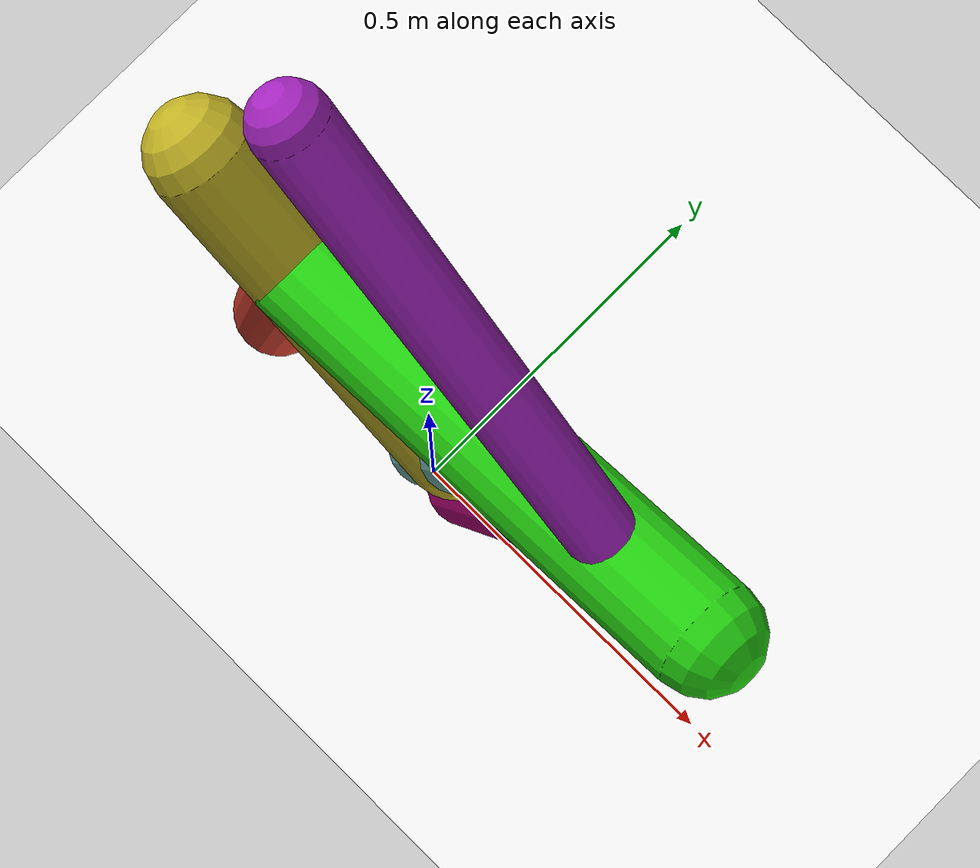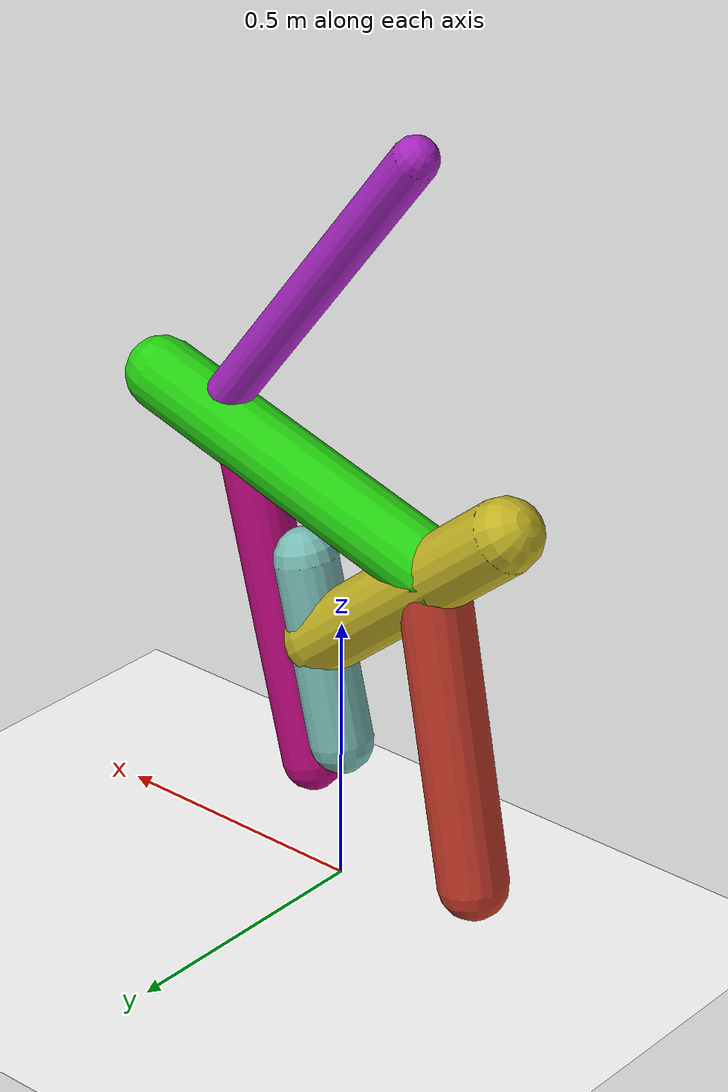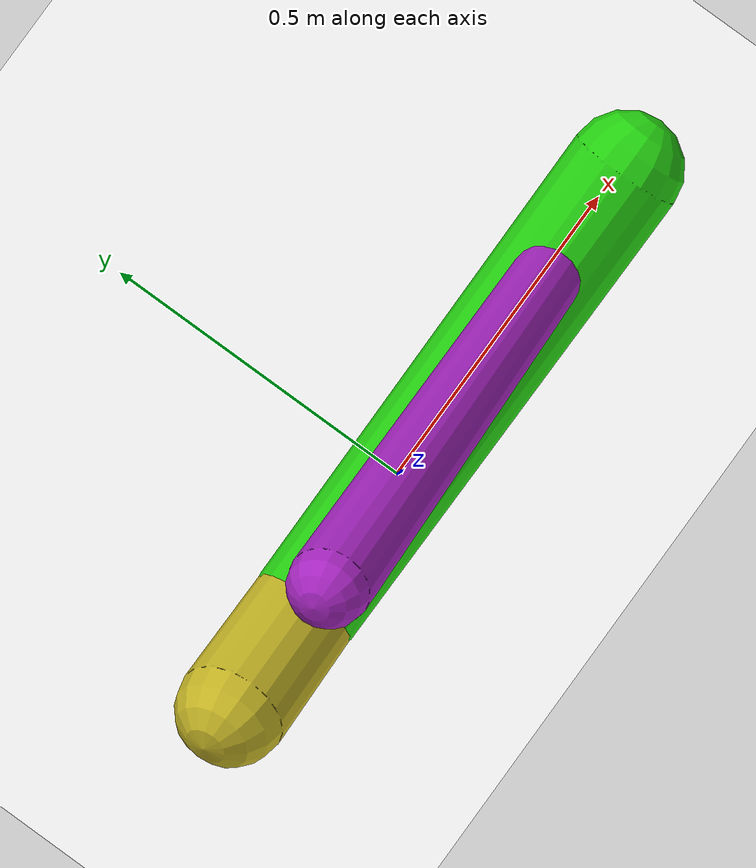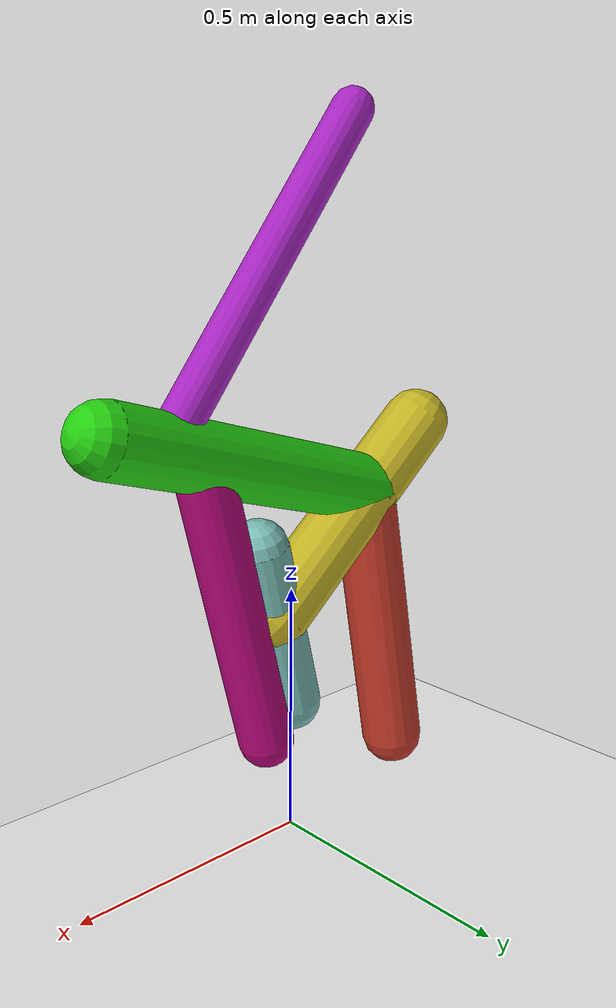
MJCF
<mujoco model="morphology">
  <option timestep="0.01"/>
  <default>
    <default class="/"/>
    <default class="0/"/>
    <default class="0/1/"/>
    <default class="0/1/2/"/>
    <default class="0/1/3/"/>
    <default class="0/1/3/4/"/>
    <default class="0/1/3/5/"/>
  </default>
  <asset>
    <texture name="texplane" type="2d" builtin="checker" rgb1="0.10000000000000001 0.20000000000000001 0.29999999999999999" rgb2="0.20000000000000001 0.29999999999999999 0.40000000000000002" width="300" height="300"/>
    <material name="MatPlane" class="/" texture="texplane" texrepeat="20 20" specular="1" shininess="1" reflectance="0.5"/>
  </asset>
  <worldbody>
    <light name="//unnamed_light_0" class="/" directional="true" pos="0 0 1.5" dir="0 0 -1.3" cutoff="100" exponent="1" diffuse="1 1 1" specular="0.10000000000000001 0.10000000000000001 0.10000000000000001"/>
    <geom name="ground" class="/" type="plane" size="15 15 0.5" material="MatPlane" rgba="1 1 1 1"/>
    <site name="body" class="/" size="9.9999999999999995e-07 9.9999999999999995e-07 9.9999999999999995e-07" pos="0 0 0.26992443799972532"/>
    <body pos="0 0 0.26992443799972532" name="0/">
      <joint name="0/rootx/" class="/" type="slide" axis="1 0 0" limited="false" stiffness="0" armature="0" damping="0"/>
      <joint name="0/rootz/" class="/" type="slide" axis="0 0 1" limited="false" stiffness="0" armature="0" damping="0"/>
      <joint name="0/rooty/" class="/" type="hinge" axis="0 1 0" limited="false" stiffness="0" armature="0" damping="0"/>
      <geom name="0/geom" class="0/" type="capsule" contype="1" conaffinity="1" condim="3" size="0.057430260536858076" rgba="0.47297161036538571 0.73764456752780383 0.7113272505060465 1" friction="0.59999999999999998 0.10000000000000001 0.10000000000000001" fromto="0 0 0 0.081769609044984204 0 0.32864169171285451"/>
      <site name="0/end0" class="0/" size="0.0050000000000000001" pos="0.081769609044984204 0 0.32864169171285451"/>
      <site name="0/attach1" class="0/" size="9.9999999999999995e-07 9.9999999999999995e-07 9.9999999999999995e-07" pos="0.046341061683691016 0 0.18625018616781747"/>
      <body pos="0.046341061683691016 0 0.18625018616781747" name="0/1/">
        <joint name="0/1/joint/" class="0/" type="hinge" axis="0 1 0" limited="true" range="-57.138010440327619 57.138010440327619"/>
        <geom name="0/1/geom" class="0/1/" type="capsule" contype="1" conaffinity="1" condim="3" size="0.066187570001106352" rgba="0.76245179324921486 0.69874345935975246 0.14115652847900184 1" friction="0.59999999999999998 0.10000000000000001 0.10000000000000001" fromto="0 0 0 -0.39223400895278937 0 0.32810690543499188"/>
        <site name="0/1/end1" class="0/1/" size="0.0050000000000000001" pos="-0.39223400895278937 0 0.32810690543499188"/>
        <site name="0/1/attach2" class="0/1/" size="9.9999999999999995e-07 9.9999999999999995e-07 9.9999999999999995e-07" pos="-0.24214039123305212 0 0.20255238616460103"/>
        <body pos="-0.24214039123305212 0 0.20255238616460103" name="0/1/2/">
          <joint name="0/1/2/joint/" class="0/1/" type="hinge" axis="0 1 0" limited="true" range="-36.321235132574913 36.321235132574913"/>
          <geom name="0/1/2/geom" class="0/1/2/" type="capsule" contype="1" conaffinity="1" condim="3" size="0.063134393563269067" rgba="0.79176855926545642 0.23319788171278755 0.16734163518432343 1" friction="0.59999999999999998 0.10000000000000001 0.10000000000000001" fromto="0 0 0 -0.10287414193727462 0 -0.55872700297670153"/>
          <site name="0/1/2/end2" class="0/1/2/" size="0.0050000000000000001" pos="-0.10287414193727462 0 -0.55872700297670153"/>
        </body>
        <site name="0/1/attach3" class="0/1/" size="9.9999999999999995e-07 9.9999999999999995e-07 9.9999999999999995e-07" pos="-0.25159413022727611 0 0.21046051492290635"/>
        <body pos="-0.25159413022727611 0 0.21046051492290635" name="0/1/3/">
          <joint name="0/1/3/joint/" class="0/1/" type="hinge" axis="0 1 0" limited="true" range="-30.22486129143299 30.22486129143299"/>
          <geom name="0/1/3/geom" class="0/1/3/" type="capsule" contype="1" conaffinity="1" condim="3" size="0.0669756510662462" rgba="0.14469178841281605 0.82038782513547692 0.067129039563824988 1" friction="0.59999999999999998 0.10000000000000001 0.10000000000000001" fromto="0 0 0 0.61654062675724219 0 0.18345310469416276"/>
          <site name="0/1/3/end3" class="0/1/3/" size="0.0050000000000000001" pos="0.61654062675724219 0 0.18345310469416276"/>
          <site name="0/1/3/attach4" class="0/1/3/" size="9.9999999999999995e-07 9.9999999999999995e-07 9.9999999999999995e-07" pos="0.49597875955866322 0 0.14757963928826792"/>
          <body pos="0.49597875955866322 0 0.14757963928826792" name="0/1/3/4/">
            <joint name="0/1/3/4/joint/" class="0/1/3/" type="hinge" axis="0 1 0" limited="true" range="-59.14682412083333 59.14682412083333"/>
            <geom name="0/1/3/4/geom" class="0/1/3/4/" type="capsule" contype="1" conaffinity="1" condim="3" size="0.040039761617859632" rgba="0.64873258582471538 0.14248418471202562 0.75070146622426548 1" friction="0.59999999999999998 0.10000000000000001 0.10000000000000001" fromto="0 0 0 -0.4380853708999049 0 0.56554630042924625"/>
            <site name="0/1/3/4/end4" class="0/1/3/4/" size="0.0050000000000000001" pos="-0.4380853708999049 0 0.56554630042924625"/>
          </body>
          <site name="0/1/3/attach5" class="0/1/3/" size="9.9999999999999995e-07 9.9999999999999995e-07 9.9999999999999995e-07" pos="0.42194793713148782 0 0.12555159502335192"/>
          <body pos="0.42194793713148782 0 0.12555159502335192" name="0/1/3/5/">
            <joint name="0/1/3/5/joint/" class="0/1/3/" type="hinge" axis="0 1 0" limited="true" range="-39.518330195611341 39.518330195611341"/>
            <geom name="0/1/3/5/geom" class="0/1/3/5/" type="capsule" contype="1" conaffinity="1" condim="3" size="0.054466083184452119" rgba="0.73221881539611822 0.028306813673424247 0.48958089963677009 1" friction="0.59999999999999998 0.10000000000000001 0.10000000000000001" fromto="0 0 0 -0.15076007544541681 0 -0.58481361350700212"/>
            <site name="0/1/3/5/end5" class="0/1/3/5/" size="0.0050000000000000001" pos="-0.15076007544541681 0 -0.58481361350700212"/>
          </body>
        </body>
      </body>
      <camera name="0/side" class="0/" mode="trackcom" pos="0.40000000000000002 -4 0.20000000000000001" quat="0.70699999999999996 0.70699999999999996 0 0"/>
    </body>
  </worldbody>
  <actuator>
    <motor name="0/1/motor" class="0/1/" ctrllimited="true" ctrlrange="-1 1" gear="74" joint="0/1/joint/"/>
    <motor name="0/1/2/motor" class="0/1/2/" ctrllimited="true" ctrlrange="-1 1" gear="87" joint="0/1/2/joint/"/>
    <motor name="0/1/3/motor" class="0/1/3/" ctrllimited="true" ctrlrange="-1 1" gear="52" joint="0/1/3/joint/"/>
    <motor name="0/1/3/4/motor" class="0/1/3/4/" ctrllimited="true" ctrlrange="-1 1" gear="79" joint="0/1/3/4/joint/"/>
    <motor name="0/1/3/5/motor" class="0/1/3/5/" ctrllimited="true" ctrlrange="-1 1" gear="68" joint="0/1/3/5/joint/"/>
  </actuator>
  <sensor>
    <subtreelinvel name="velocity" body="0/"/>
  </sensor>
</mujoco>
